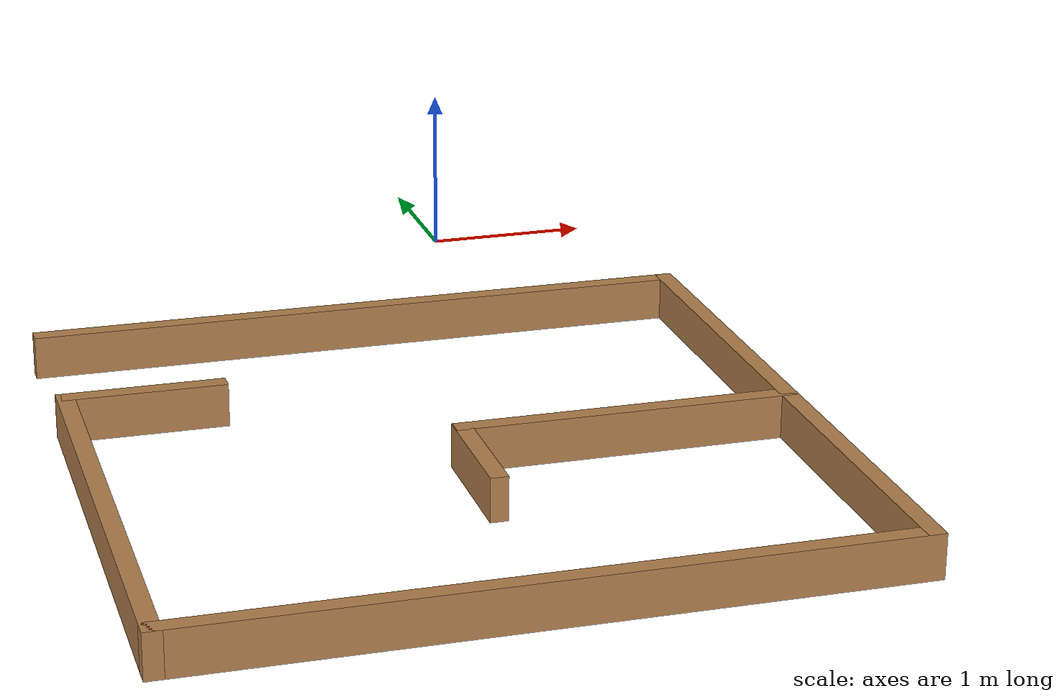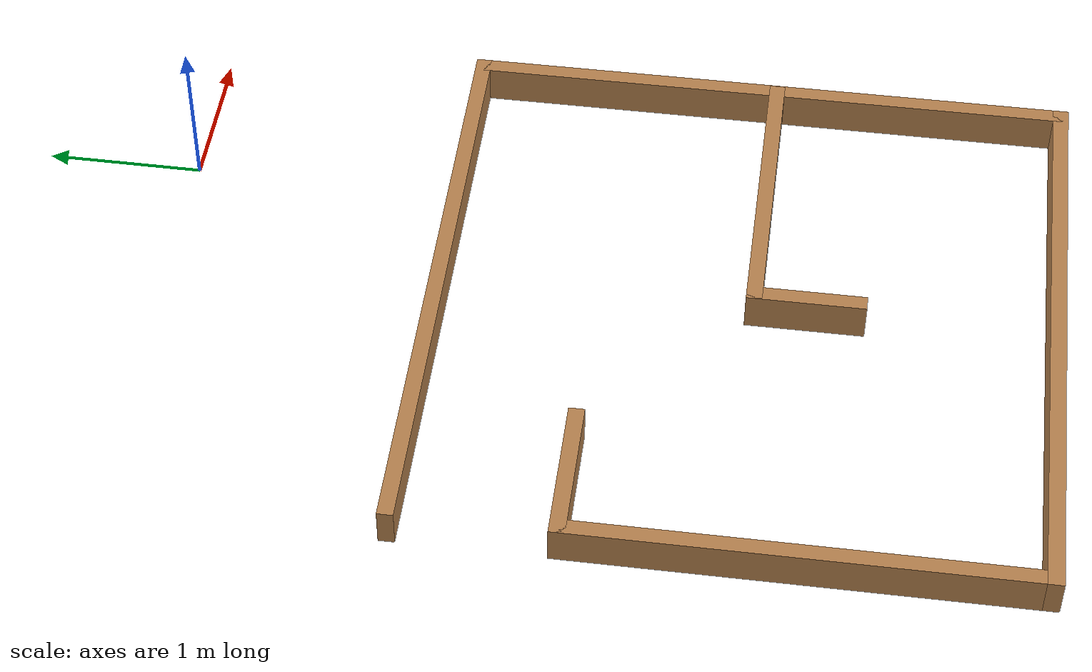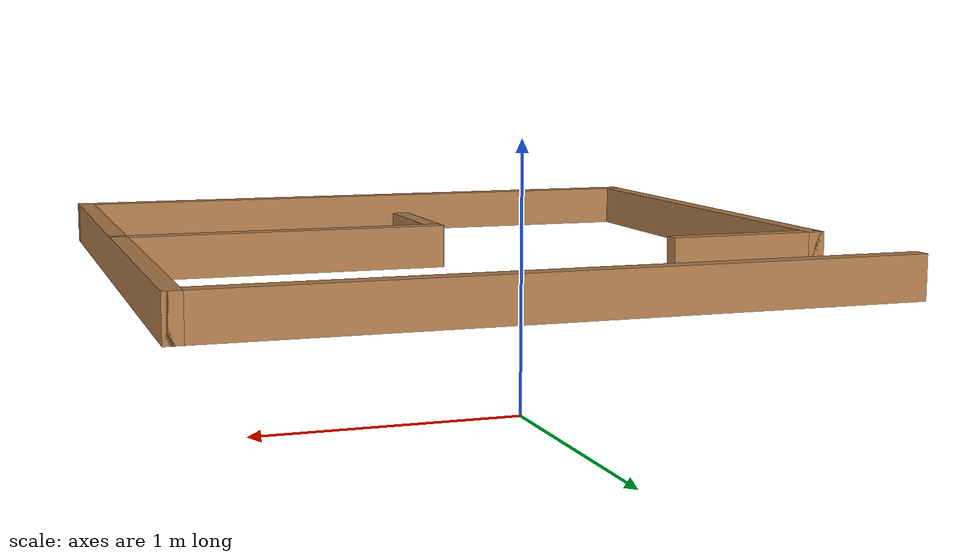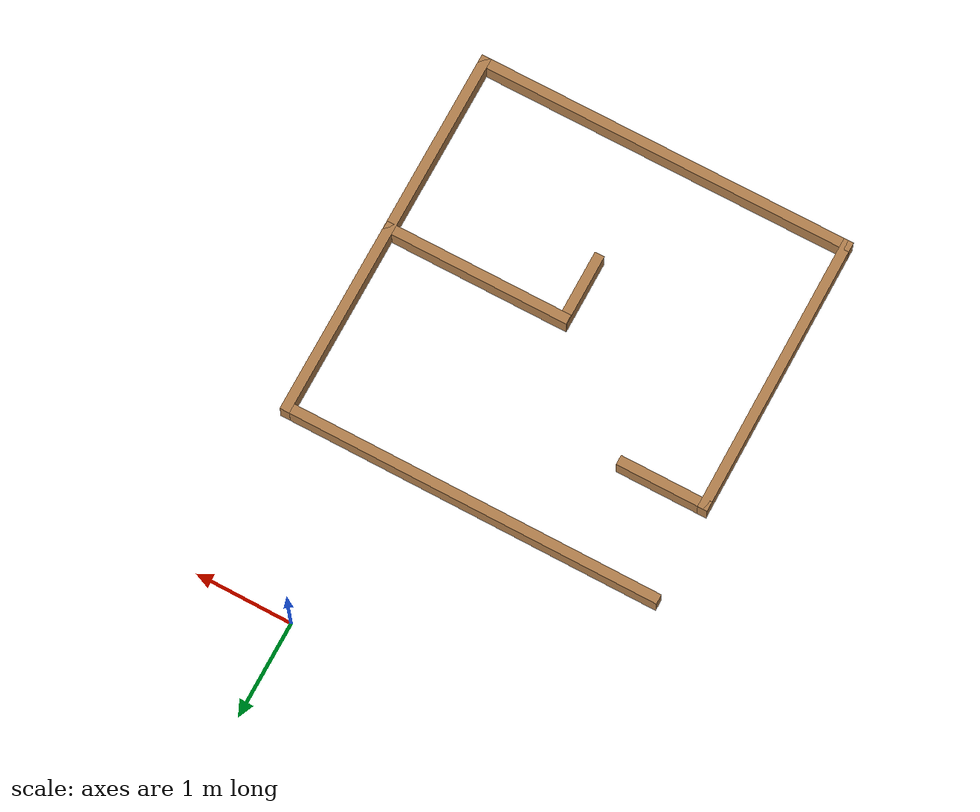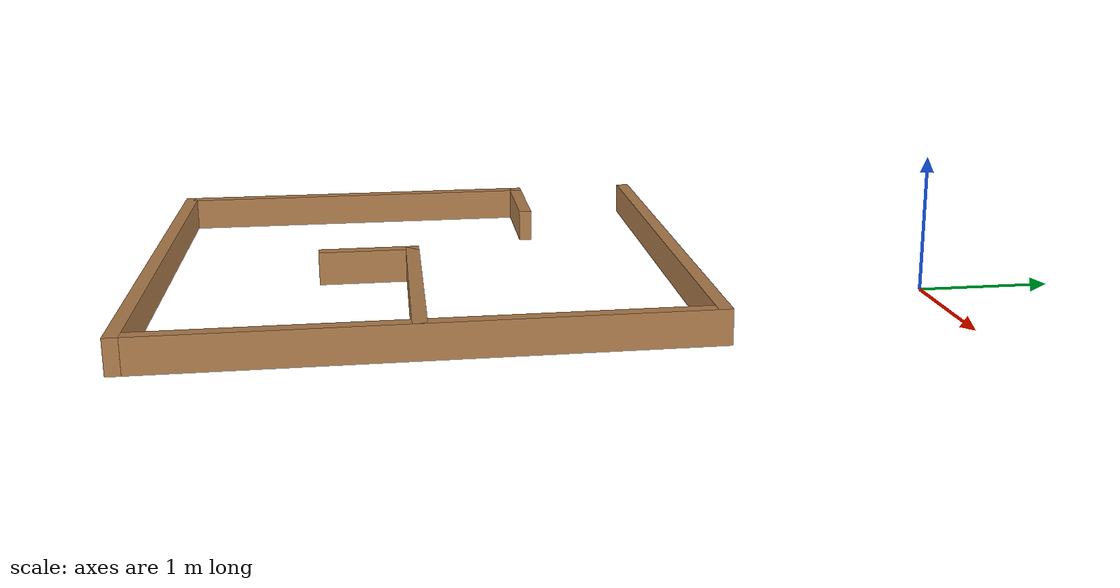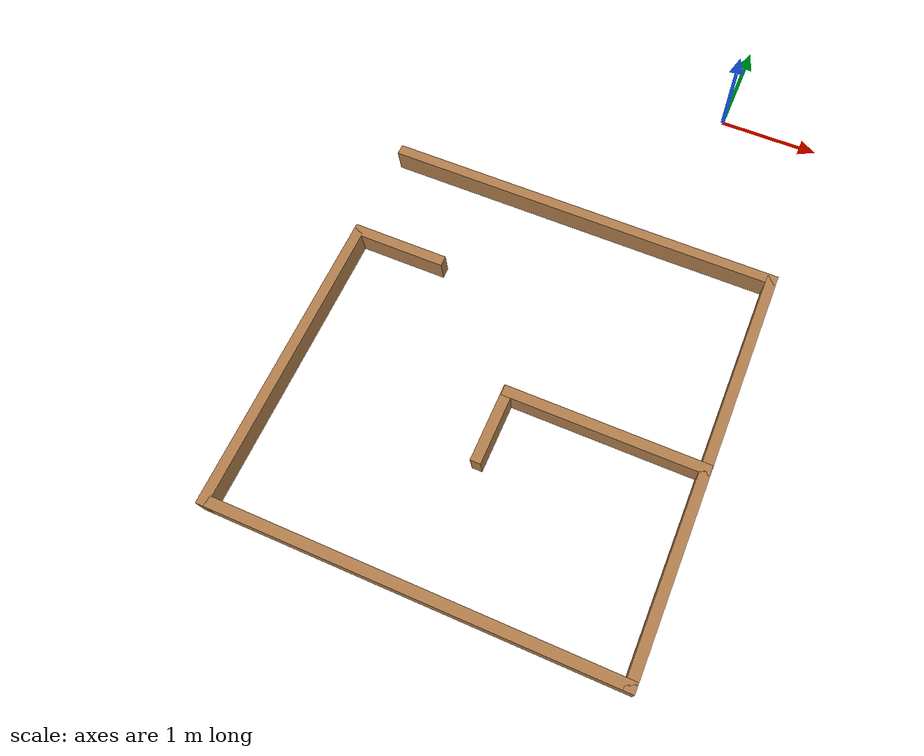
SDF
<?xml version='1.0'?>
<sdf version='1.7'>
  <model name='my_project_model'>
    <pose>-0.925 -2.825 0 0 -0 0</pose>
    <link name='Wall_1'>
      <collision name='Wall_1_Collision'>
        <geometry>
          <box>
            <size>3.95 0.1 0.25</size>
          </box>
        </geometry>
        <pose>0 0 0.125 0 -0 0</pose>
      </collision>
      <visual name='Wall_1_Visual'>
        <pose>0 0 0.125 0 -0 0</pose>
        <geometry>
          <box>
            <size>3.95 0.1 0.25</size>
          </box>
        </geometry>
        <material>
          <script>
            <uri>file://media/materials/scripts/gazebo.material</uri>
            <name>Gazebo/Wood</name>
          </script>
          <ambient>1 1 1 1</ambient>
        </material>
        <meta>
          <layer>0</layer>
        </meta>
      </visual>
      <pose>-0 1.075 0 0 -0 0</pose>
    </link>
    <link name='Wall_13'>
      <collision name='Wall_13_Collision'>
        <geometry>
          <box>
            <size>1.95 0.1 0.25</size>
          </box>
        </geometry>
        <pose>0 0 0.125 0 -0 0</pose>
      </collision>
      <visual name='Wall_13_Visual'>
        <pose>0 0 0.125 0 -0 0</pose>
        <geometry>
          <box>
            <size>1.95 0.1 0.25</size>
          </box>
        </geometry>
        <material>
          <script>
            <uri>file://media/materials/scripts/gazebo.material</uri>
            <name>Gazebo/Wood</name>
          </script>
          <ambient>1 1 1 1</ambient>
        </material>
        <meta>
          <layer>0</layer>
        </meta>
      </visual>
      <pose>0.99613 -0.901 0 0 -0 3.14159</pose>
    </link>
    <link name='Wall_15'>
      <collision name='Wall_15_Collision'>
        <geometry>
          <box>
            <size>0.75 0.1 0.25</size>
          </box>
        </geometry>
        <pose>0 0 0.125 0 -0 0</pose>
      </collision>
      <visual name='Wall_15_Visual'>
        <pose>0 0 0.125 0 -0 0</pose>
        <geometry>
          <box>
            <size>0.75 0.1 0.25</size>
          </box>
        </geometry>
        <material>
          <script>
            <uri>file://media/materials/scripts/gazebo.material</uri>
            <name>Gazebo/Wood</name>
          </script>
          <ambient>1 1 1 1</ambient>
        </material>
        <meta>
          <layer>0</layer>
        </meta>
      </visual>
      <pose>0.065412 -1.226 0 0 -0 -1.5708</pose>
    </link>
    <link name='Wall_3'>
      <collision name='Wall_3_Collision'>
        <geometry>
          <box>
            <size>3.95 0.1 0.25</size>
          </box>
        </geometry>
        <pose>0 0 0.125 0 -0 0</pose>
      </collision>
      <visual name='Wall_3_Visual'>
        <pose>0 0 0.125 0 -0 0</pose>
        <geometry>
          <box>
            <size>3.95 0.1 0.25</size>
          </box>
        </geometry>
        <material>
          <script>
            <uri>file://media/materials/scripts/gazebo.material</uri>
            <name>Gazebo/Wood</name>
          </script>
          <ambient>1 1 1 1</ambient>
        </material>
        <meta>
          <layer>0</layer>
        </meta>
      </visual>
      <pose>1.925 -0.85 0 0 -0 -1.5708</pose>
    </link>
    <link name='Wall_6'>
      <collision name='Wall_6_Collision'>
        <geometry>
          <box>
            <size>3.95 0.1 0.25</size>
          </box>
        </geometry>
        <pose>0 0 0.125 0 -0 0</pose>
      </collision>
      <visual name='Wall_6_Visual'>
        <pose>0 0 0.125 0 -0 0</pose>
        <geometry>
          <box>
            <size>3.95 0.1 0.25</size>
          </box>
        </geometry>
        <material>
          <script>
            <uri>file://media/materials/scripts/gazebo.material</uri>
            <name>Gazebo/Wood</name>
          </script>
          <ambient>1 1 1 1</ambient>
        </material>
        <meta>
          <layer>0</layer>
        </meta>
      </visual>
      <pose>-0 -2.775 0 0 -0 3.14159</pose>
    </link>
    <link name='Wall_7'>
      <collision name='Wall_7_Collision'>
        <geometry>
          <box>
            <size>2.95 0.1 0.25</size>
          </box>
        </geometry>
        <pose>0 0 0.125 0 -0 0</pose>
      </collision>
      <visual name='Wall_7_Visual'>
        <pose>0 0 0.125 0 -0 0</pose>
        <geometry>
          <box>
            <size>2.95 0.1 0.25</size>
          </box>
        </geometry>
        <material>
          <script>
            <uri>file://media/materials/scripts/gazebo.material</uri>
            <name>Gazebo/Wood</name>
          </script>
          <ambient>1 1 1 1</ambient>
        </material>
        <meta>
          <layer>0</layer>
        </meta>
      </visual>
      <pose>-1.925 -1.35 0 0 -0 1.5708</pose>
    </link>
    <link name='Wall_9'>
      <collision name='Wall_9_Collision'>
        <geometry>
          <box>
            <size>0.95 0.1 0.25</size>
          </box>
        </geometry>
        <pose>0 0 0.125 0 -0 0</pose>
      </collision>
      <visual name='Wall_9_Visual'>
        <pose>0 0 0.125 0 -0 0</pose>
        <geometry>
          <box>
            <size>0.95 0.1 0.25</size>
          </box>
        </geometry>
        <material>
          <script>
            <uri>file://media/materials/scripts/gazebo.material</uri>
            <name>Gazebo/Wood</name>
          </script>
          <ambient>1 1 1 1</ambient>
        </material>
        <meta>
          <layer>0</layer>
        </meta>
      </visual>
      <pose>-1.5 0.075 0 0 -0 0</pose>
    </link>
    <static>1</static>
  </model>
</sdf>
